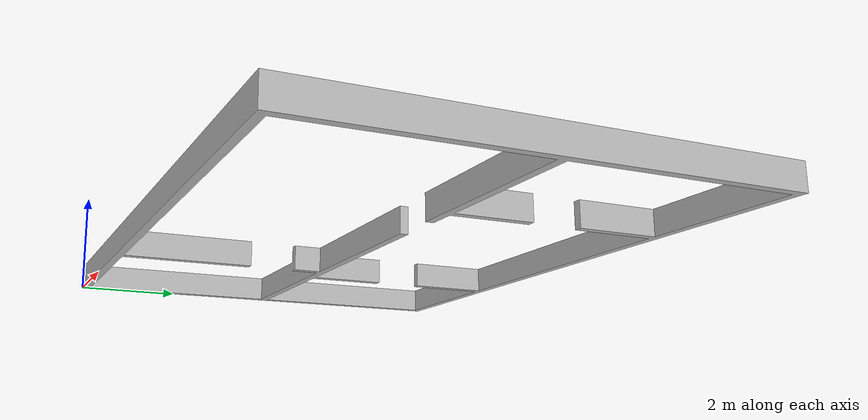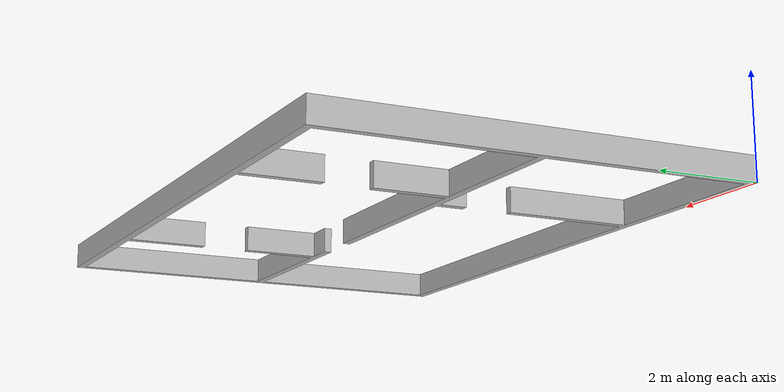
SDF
<?xml version="1.0" ?>
<sdf version="1.5">
  <model name="house">
    <pose>0 0 0 0 0 0</pose>
    <static>true</static>
    <link name="body">
      <visual name="visual">
        <geometry>
          <mesh><uri>file://models/house/meshes/house.dae</uri></mesh>
        </geometry>
      </visual>
      <mu1>0.0</mu1>
      <mu2>0.0</mu2>
      <collision name="collision">
        <geometry>
          <mesh><uri>file://models/house/meshes/house.dae</uri></mesh>
        </geometry>
        <surface>
          <contact>
            <ode/>
          </contact>
          <bounce/>
          <friction>
            <ode>
              <mu>0</mu>
              <mu2>0</mu2>
            </ode>
            <torsional>
              <ode/>
            </torsional>
            <ode/>
          </friction>
        </surface>
      </collision>
    </link>
  </model>
</sdf>
